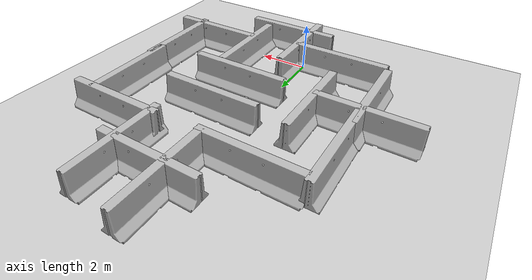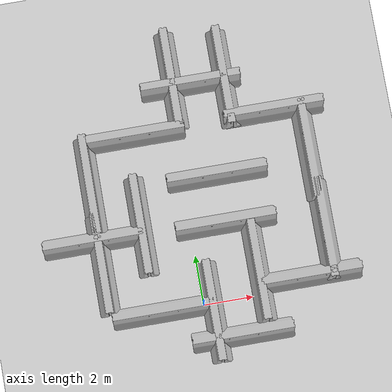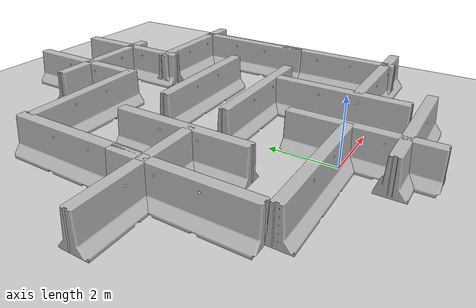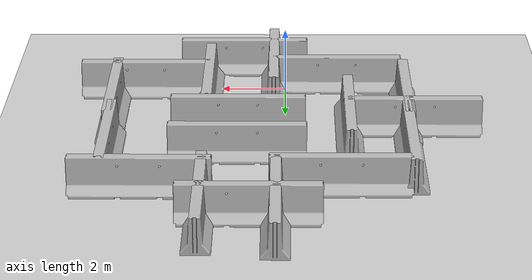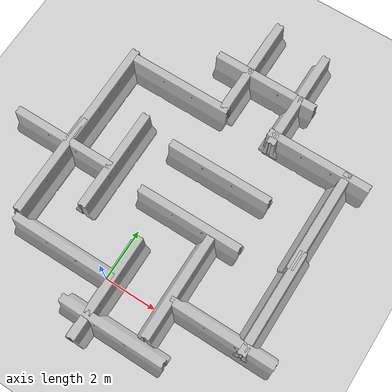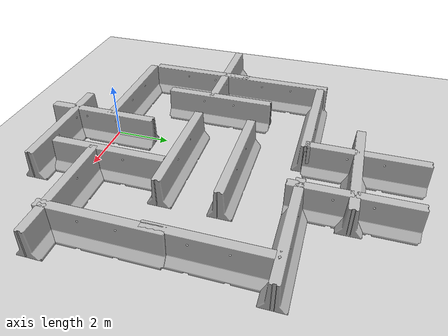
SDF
<sdf version="1.4">
 <world name="default">
  <light name="sun" type="directional">
   <pose>0 0 10 0 -0 0</pose>
   <diffuse>0.8 0.8 0.8 1</diffuse>
   <specular>0.1 0.1 0.1 1</specular>
   <attenuation>
    <range>1000</range>
    <constant>0.9</constant>
    <linear>0.01</linear>
    <quadratic>0.001</quadratic>
   </attenuation>
   <direction>-0.5 0.5 -1</direction>
  </light>
  <model name="ground_plane">
   <static>1</static>
   <link name="link">
    <collision name="collision">
     <geometry><plane><normal>0 0 1</normal><size>100 100</size></plane></geometry>
     <surface><friction><ode><mu>100</mu><mu2>50</mu2></ode></friction></surface>
    </collision>
    <visual name="visual">
     <cast_shadows>0</cast_shadows>
     <geometry><plane><normal>0 0 1</normal><size>100 100</size></plane></geometry>
     <material>
      <script><uri>file://media/materials/scripts/gazebo.material</uri><name>Gazebo/Grey</name></script>
     </material>
    </visual>
    <kinematic>1</kinematic>
    <velocity_decay><linear>0</linear><angular>0</angular></velocity_decay>
   </link>
  </model>
  <physics type="ode">
   <max_step_size>0.001</max_step_size>
   <real_time_factor>10</real_time_factor>
   <real_time_update_rate>10000</real_time_update_rate>
   <gravity>0 0 -9.8</gravity>
  </physics>
  <scene><ambient>0.4 0.4 0.4 1</ambient><background>0.7 0.7 0.7 1</background><shadows>1</shadows></scene>
  <spherical_coordinates>
   <surface_model>EARTH_WGS84</surface_model>
   <latitude_deg>0</latitude_deg>
   <longitude_deg>0</longitude_deg>
   <elevation>0</elevation>
   <heading_deg>0</heading_deg>
  </spherical_coordinates>
  <model name="jersey_barrier_0">
   <static>1</static>
   <link name="link">
    <visual name="visual">
     <geometry><mesh><uri>model://jersey_barrier/meshes/jersey_barrier.dae</uri></mesh></geometry>
    </visual>
    <collision name="upright">
     <pose>0 0 0.5715 0 -0 0</pose>
     <geometry><box><size>4.06542 0.3063 1.143</size></box></geometry>
    </collision>
    <collision name="base">
     <pose>0 0 0.032258 0 -0 0</pose>
     <geometry><box><size>4.06542 0.8107 0.064516</size></box></geometry>
    </collision>
    <collision name="base2">
     <pose>0 0 0.1 0 -0 0</pose>
     <geometry><box><size>4.06542 0.65 0.1</size></box></geometry>
    </collision>
    <collision name="base3">
     <pose>0 0 0.2 0 -0 0</pose>
     <geometry><box><size>4.06542 0.5 0.1</size></box></geometry>
    </collision>
    <collision name="left-angle">
     <pose>0 -0.224 0.2401 0.9 -0 0</pose>
     <geometry><box><size>4.06542 0.5 0.064516</size></box></geometry>
    </collision>
    <collision name="right-angle">
     <pose>0 0.224 0.2401 -0.9 0 0</pose>
     <geometry><box><size>4.06542 0.5 0.064516</size></box></geometry>
    </collision>
    <velocity_decay><linear>0</linear><angular>0</angular></velocity_decay>
   </link>
   <pose>0.988618 8.93184 0 0 -0 0</pose>
  </model>
  <model name="jersey_barrier_1">
   <static>1</static>
   <link name="link">
    <visual name="visual">
     <geometry><mesh><uri>model://jersey_barrier/meshes/jersey_barrier.dae</uri></mesh></geometry>
    </visual>
    <collision name="upright">
     <pose>0 0 0.5715 0 -0 0</pose>
     <geometry><box><size>4.06542 0.3063 1.143</size></box></geometry>
    </collision>
    <collision name="base">
     <pose>0 0 0.032258 0 -0 0</pose>
     <geometry><box><size>4.06542 0.8107 0.064516</size></box></geometry>
    </collision>
    <collision name="base2">
     <pose>0 0 0.1 0 -0 0</pose>
     <geometry><box><size>4.06542 0.65 0.1</size></box></geometry>
    </collision>
    <collision name="base3">
     <pose>0 0 0.2 0 -0 0</pose>
     <geometry><box><size>4.06542 0.5 0.1</size></box></geometry>
    </collision>
    <collision name="left-angle">
     <pose>0 -0.224 0.2401 0.9 -0 0</pose>
     <geometry><box><size>4.06542 0.5 0.064516</size></box></geometry>
    </collision>
    <collision name="right-angle">
     <pose>0 0.224 0.2401 -0.9 0 0</pose>
     <geometry><box><size>4.06542 0.5 0.064516</size></box></geometry>
    </collision>
    <velocity_decay><linear>0</linear><angular>0</angular></velocity_decay>
   </link>
   <pose>2.35061 8.92401 0 0 0 -1.5708</pose>
  </model>
  <model name="jersey_barrier_2">
   <static>1</static>
   <link name="link">
    <visual name="visual">
     <geometry><mesh><uri>model://jersey_barrier/meshes/jersey_barrier.dae</uri></mesh></geometry>
    </visual>
    <collision name="upright">
     <pose>0 0 0.5715 0 -0 0</pose>
     <geometry><box><size>4.06542 0.3063 1.143</size></box></geometry>
    </collision>
    <collision name="base">
     <pose>0 0 0.032258 0 -0 0</pose>
     <geometry><box><size>4.06542 0.8107 0.064516</size></box></geometry>
    </collision>
    <collision name="base2">
     <pose>0 0 0.1 0 -0 0</pose>
     <geometry><box><size>4.06542 0.65 0.1</size></box></geometry>
    </collision>
    <collision name="base3">
     <pose>0 0 0.2 0 -0 0</pose>
     <geometry><box><size>4.06542 0.5 0.1</size></box></geometry>
    </collision>
    <collision name="left-angle">
     <pose>0 -0.224 0.2401 0.9 -0 0</pose>
     <geometry><box><size>4.06542 0.5 0.064516</size></box></geometry>
    </collision>
    <collision name="right-angle">
     <pose>0 0.224 0.2401 -0.9 0 0</pose>
     <geometry><box><size>4.06542 0.5 0.064516</size></box></geometry>
    </collision>
    <velocity_decay><linear>0</linear><angular>0</angular></velocity_decay>
   </link>
   <pose>4.08822 7.29699 0 0 -0 0</pose>
  </model>
  <model name="jersey_barrier_3">
   <static>1</static>
   <link name="link">
    <visual name="visual">
     <geometry><mesh><uri>model://jersey_barrier/meshes/jersey_barrier.dae</uri></mesh></geometry>
    </visual>
    <collision name="upright">
     <pose>0 0 0.5715 0 -0 0</pose>
     <geometry><box><size>4.06542 0.3063 1.143</size></box></geometry>
    </collision>
    <collision name="base">
     <pose>0 0 0.032258 0 -0 0</pose>
     <geometry><box><size>4.06542 0.8107 0.064516</size></box></geometry>
    </collision>
    <collision name="base2">
     <pose>0 0 0.1 0 -0 0</pose>
     <geometry><box><size>4.06542 0.65 0.1</size></box></geometry>
    </collision>
    <collision name="base3">
     <pose>0 0 0.2 0 -0 0</pose>
     <geometry><box><size>4.06542 0.5 0.1</size></box></geometry>
    </collision>
    <collision name="left-angle">
     <pose>0 -0.224 0.2401 0.9 -0 0</pose>
     <geometry><box><size>4.06542 0.5 0.064516</size></box></geometry>
    </collision>
    <collision name="right-angle">
     <pose>0 0.224 0.2401 -0.9 0 0</pose>
     <geometry><box><size>4.06542 0.5 0.064516</size></box></geometry>
    </collision>
    <velocity_decay><linear>0</linear><angular>0</angular></velocity_decay>
   </link>
   <pose>5.20367 5.40538 -0 0 0 -1.5708</pose>
  </model>
  <model name="jersey_barrier_4">
   <static>1</static>
   <link name="link">
    <visual name="visual">
     <geometry><mesh><uri>model://jersey_barrier/meshes/jersey_barrier.dae</uri></mesh></geometry>
    </visual>
    <collision name="upright">
     <pose>0 0 0.5715 0 -0 0</pose>
     <geometry><box><size>4.06542 0.3063 1.143</size></box></geometry>
    </collision>
    <collision name="base">
     <pose>0 0 0.032258 0 -0 0</pose>
     <geometry><box><size>4.06542 0.8107 0.064516</size></box></geometry>
    </collision>
    <collision name="base2">
     <pose>0 0 0.1 0 -0 0</pose>
     <geometry><box><size>4.06542 0.65 0.1</size></box></geometry>
    </collision>
    <collision name="base3">
     <pose>0 0 0.2 0 -0 0</pose>
     <geometry><box><size>4.06542 0.5 0.1</size></box></geometry>
    </collision>
    <collision name="left-angle">
     <pose>0 -0.224 0.2401 0.9 -0 0</pose>
     <geometry><box><size>4.06542 0.5 0.064516</size></box></geometry>
    </collision>
    <collision name="right-angle">
     <pose>0 0.224 0.2401 -0.9 0 0</pose>
     <geometry><box><size>4.06542 0.5 0.064516</size></box></geometry>
    </collision>
    <velocity_decay><linear>0</linear><angular>0</angular></velocity_decay>
   </link>
   <pose>0.356382 -0.360778 0 0 0 -1.5708</pose>
  </model>
  <model name="jersey_barrier_5">
   <static>1</static>
   <link name="link">
    <visual name="visual">
     <geometry><mesh><uri>model://jersey_barrier/meshes/jersey_barrier.dae</uri></mesh></geometry>
    </visual>
    <collision name="upright">
     <pose>0 0 0.5715 0 -0 0</pose>
     <geometry><box><size>4.06542 0.3063 1.143</size></box></geometry>
    </collision>
    <collision name="base">
     <pose>0 0 0.032258 0 -0 0</pose>
     <geometry><box><size>4.06542 0.8107 0.064516</size></box></geometry>
    </collision>
    <collision name="base2">
     <pose>0 0 0.1 0 -0 0</pose>
     <geometry><box><size>4.06542 0.65 0.1</size></box></geometry>
    </collision>
    <collision name="base3">
     <pose>0 0 0.2 0 -0 0</pose>
     <geometry><box><size>4.06542 0.5 0.1</size></box></geometry>
    </collision>
    <collision name="left-angle">
     <pose>0 -0.224 0.2401 0.9 -0 0</pose>
     <geometry><box><size>4.06542 0.5 0.064516</size></box></geometry>
    </collision>
    <collision name="right-angle">
     <pose>0 0.224 0.2401 -0.9 0 0</pose>
     <geometry><box><size>4.06542 0.5 0.064516</size></box></geometry>
    </collision>
    <velocity_decay><linear>0</linear><angular>0</angular></velocity_decay>
   </link>
   <pose>5.27623 2.15324 0 0 0 -1.5708</pose>
  </model>
  <model name="jersey_barrier_8">
   <static>1</static>
   <link name="link">
    <visual name="visual">
     <geometry><mesh><uri>model://jersey_barrier/meshes/jersey_barrier.dae</uri></mesh></geometry>
    </visual>
    <collision name="upright">
     <pose>0 0 0.5715 0 -0 0</pose>
     <geometry><box><size>4.06542 0.3063 1.143</size></box></geometry>
    </collision>
    <collision name="base">
     <pose>0 0 0.032258 0 -0 0</pose>
     <geometry><box><size>4.06542 0.8107 0.064516</size></box></geometry>
    </collision>
    <collision name="base2">
     <pose>0 0 0.1 0 -0 0</pose>
     <geometry><box><size>4.06542 0.65 0.1</size></box></geometry>
    </collision>
    <collision name="base3">
     <pose>0 0 0.2 0 -0 0</pose>
     <geometry><box><size>4.06542 0.5 0.1</size></box></geometry>
    </collision>
    <collision name="left-angle">
     <pose>0 -0.224 0.2401 0.9 -0 0</pose>
     <geometry><box><size>4.06542 0.5 0.064516</size></box></geometry>
    </collision>
    <collision name="right-angle">
     <pose>0 0.224 0.2401 -0.9 0 0</pose>
     <geometry><box><size>4.06542 0.5 0.064516</size></box></geometry>
    </collision>
    <velocity_decay><linear>0</linear><angular>0</angular></velocity_decay>
   </link>
   <pose>4.38498 0.419911 0 0 -0 0</pose>
  </model>
  <model name="jersey_barrier_9">
   <static>1</static>
   <link name="link">
    <visual name="visual">
     <geometry><mesh><uri>model://jersey_barrier/meshes/jersey_barrier.dae</uri></mesh></geometry>
    </visual>
    <collision name="upright">
     <pose>0 0 0.5715 0 -0 0</pose>
     <geometry><box><size>4.06542 0.3063 1.143</size></box></geometry>
    </collision>
    <collision name="base">
     <pose>0 0 0.032258 0 -0 0</pose>
     <geometry><box><size>4.06542 0.8107 0.064516</size></box></geometry>
    </collision>
    <collision name="base2">
     <pose>0 0 0.1 0 -0 0</pose>
     <geometry><box><size>4.06542 0.65 0.1</size></box></geometry>
    </collision>
    <collision name="base3">
     <pose>0 0 0.2 0 -0 0</pose>
     <geometry><box><size>4.06542 0.5 0.1</size></box></geometry>
    </collision>
    <collision name="left-angle">
     <pose>0 -0.224 0.2401 0.9 -0 0</pose>
     <geometry><box><size>4.06542 0.5 0.064516</size></box></geometry>
    </collision>
    <collision name="right-angle">
     <pose>0 0.224 0.2401 -0.9 0 0</pose>
     <geometry><box><size>4.06542 0.5 0.064516</size></box></geometry>
    </collision>
    <velocity_decay><linear>0</linear><angular>0</angular></velocity_decay>
   </link>
   <pose>1.32528 -1.43735 -0 0 -0 0</pose>
  </model>
  <model name="jersey_barrier_10">
   <static>1</static>
   <link name="link">
    <visual name="visual">
     <geometry><mesh><uri>model://jersey_barrier/meshes/jersey_barrier.dae</uri></mesh></geometry>
    </visual>
    <collision name="upright">
     <pose>0 0 0.5715 0 -0 0</pose>
     <geometry><box><size>4.06542 0.3063 1.143</size></box></geometry>
    </collision>
    <collision name="base">
     <pose>0 0 0.032258 0 -0 0</pose>
     <geometry><box><size>4.06542 0.8107 0.064516</size></box></geometry>
    </collision>
    <collision name="base2">
     <pose>0 0 0.1 0 -0 0</pose>
     <geometry><box><size>4.06542 0.65 0.1</size></box></geometry>
    </collision>
    <collision name="base3">
     <pose>0 0 0.2 0 -0 0</pose>
     <geometry><box><size>4.06542 0.5 0.1</size></box></geometry>
    </collision>
    <collision name="left-angle">
     <pose>0 -0.224 0.2401 0.9 -0 0</pose>
     <geometry><box><size>4.06542 0.5 0.064516</size></box></geometry>
    </collision>
    <collision name="right-angle">
     <pose>0 0.224 0.2401 -0.9 0 0</pose>
     <geometry><box><size>4.06542 0.5 0.064516</size></box></geometry>
    </collision>
    <velocity_decay><linear>0</linear><angular>0</angular></velocity_decay>
   </link>
   <pose>-1.62056 -0.002207 0 0 -0 0</pose>
  </model>
  <model name="jersey_barrier_12">
   <static>1</static>
   <link name="link">
    <visual name="visual">
     <geometry><mesh><uri>model://jersey_barrier/meshes/jersey_barrier.dae</uri></mesh></geometry>
    </visual>
    <collision name="upright">
     <pose>0 0 0.5715 0 -0 0</pose>
     <geometry><box><size>4.06542 0.3063 1.143</size></box></geometry>
    </collision>
    <collision name="base">
     <pose>0 0 0.032258 0 -0 0</pose>
     <geometry><box><size>4.06542 0.8107 0.064516</size></box></geometry>
    </collision>
    <collision name="base2">
     <pose>0 0 0.1 0 -0 0</pose>
     <geometry><box><size>4.06542 0.65 0.1</size></box></geometry>
    </collision>
    <collision name="base3">
     <pose>0 0 0.2 0 -0 0</pose>
     <geometry><box><size>4.06542 0.5 0.1</size></box></geometry>
    </collision>
    <collision name="left-angle">
     <pose>0 -0.224 0.2401 0.9 -0 0</pose>
     <geometry><box><size>4.06542 0.5 0.064516</size></box></geometry>
    </collision>
    <collision name="right-angle">
     <pose>0 0.224 0.2401 -0.9 0 0</pose>
     <geometry><box><size>4.06542 0.5 0.064516</size></box></geometry>
    </collision>
    <velocity_decay><linear>0</linear><angular>0</angular></velocity_decay>
   </link>
   <pose>1.40128 5.08256 0 0 -0 0</pose>
  </model>
  <model name="jersey_barrier_13">
   <static>1</static>
   <link name="link">
    <visual name="visual">
     <geometry><mesh><uri>model://jersey_barrier/meshes/jersey_barrier.dae</uri></mesh></geometry>
    </visual>
    <collision name="upright">
     <pose>0 0 0.5715 0 -0 0</pose>
     <geometry><box><size>4.06542 0.3063 1.143</size></box></geometry>
    </collision>
    <collision name="base">
     <pose>0 0 0.032258 0 -0 0</pose>
     <geometry><box><size>4.06542 0.8107 0.064516</size></box></geometry>
    </collision>
    <collision name="base2">
     <pose>0 0 0.1 0 -0 0</pose>
     <geometry><box><size>4.06542 0.65 0.1</size></box></geometry>
    </collision>
    <collision name="base3">
     <pose>0 0 0.2 0 -0 0</pose>
     <geometry><box><size>4.06542 0.5 0.1</size></box></geometry>
    </collision>
    <collision name="left-angle">
     <pose>0 -0.224 0.2401 0.9 -0 0</pose>
     <geometry><box><size>4.06542 0.5 0.064516</size></box></geometry>
    </collision>
    <collision name="right-angle">
     <pose>0 0.224 0.2401 -0.9 0 0</pose>
     <geometry><box><size>4.06542 0.5 0.064516</size></box></geometry>
    </collision>
    <velocity_decay><linear>0</linear><angular>0</angular></velocity_decay>
   </link>
   <pose>1.41777 3.09756 0 0 -0 0</pose>
  </model>
  <model name="jersey_barrier_14">
   <static>1</static>
   <link name="link">
    <visual name="visual">
     <geometry><mesh><uri>model://jersey_barrier/meshes/jersey_barrier.dae</uri></mesh></geometry>
    </visual>
    <collision name="upright">
     <pose>0 0 0.5715 0 -0 0</pose>
     <geometry><box><size>4.06542 0.3063 1.143</size></box></geometry>
    </collision>
    <collision name="base">
     <pose>0 0 0.032258 0 -0 0</pose>
     <geometry><box><size>4.06542 0.8107 0.064516</size></box></geometry>
    </collision>
    <collision name="base2">
     <pose>0 0 0.1 0 -0 0</pose>
     <geometry><box><size>4.06542 0.65 0.1</size></box></geometry>
    </collision>
    <collision name="base3">
     <pose>0 0 0.2 0 -0 0</pose>
     <geometry><box><size>4.06542 0.5 0.1</size></box></geometry>
    </collision>
    <collision name="left-angle">
     <pose>0 -0.224 0.2401 0.9 -0 0</pose>
     <geometry><box><size>4.06542 0.5 0.064516</size></box></geometry>
    </collision>
    <collision name="right-angle">
     <pose>0 0.224 0.2401 -0.9 0 0</pose>
     <geometry><box><size>4.06542 0.5 0.064516</size></box></geometry>
    </collision>
    <velocity_decay><linear>0</linear><angular>0</angular></velocity_decay>
   </link>
   <pose>2.38274 0.930792 0 0 0 -1.5708</pose>
  </model>
  <model name="jersey_barrier_16">
   <static>1</static>
   <link name="link">
    <visual name="visual">
     <geometry><mesh><uri>model://jersey_barrier/meshes/jersey_barrier.dae</uri></mesh></geometry>
    </visual>
    <collision name="upright">
     <pose>0 0 0.5715 0 -0 0</pose>
     <geometry><box><size>4.06542 0.3063 1.143</size></box></geometry>
    </collision>
    <collision name="base">
     <pose>0 0 0.032258 0 -0 0</pose>
     <geometry><box><size>4.06542 0.8107 0.064516</size></box></geometry>
    </collision>
    <collision name="base2">
     <pose>0 0 0.1 0 -0 0</pose>
     <geometry><box><size>4.06542 0.65 0.1</size></box></geometry>
    </collision>
    <collision name="base3">
     <pose>0 0 0.2 0 -0 0</pose>
     <geometry><box><size>4.06542 0.5 0.1</size></box></geometry>
    </collision>
    <collision name="left-angle">
     <pose>0 -0.224 0.2401 0.9 -0 0</pose>
     <geometry><box><size>4.06542 0.5 0.064516</size></box></geometry>
    </collision>
    <collision name="right-angle">
     <pose>0 0.224 0.2401 -0.9 0 0</pose>
     <geometry><box><size>4.06542 0.5 0.064516</size></box></geometry>
    </collision>
    <velocity_decay><linear>0</linear><angular>0</angular></velocity_decay>
   </link>
   <pose>-1.57868 7.18938 0 0 -0 0</pose>
  </model>
  <model name="jersey_barrier_21">
   <static>1</static>
   <link name="link">
    <visual name="visual">
     <geometry><mesh><uri>model://jersey_barrier/meshes/jersey_barrier.dae</uri></mesh></geometry>
    </visual>
    <collision name="upright">
     <pose>0 0 0.5715 0 -0 0</pose>
     <geometry><box><size>4.06542 0.3063 1.143</size></box></geometry>
    </collision>
    <collision name="base">
     <pose>0 0 0.032258 0 -0 0</pose>
     <geometry><box><size>4.06542 0.8107 0.064516</size></box></geometry>
    </collision>
    <collision name="base2">
     <pose>0 0 0.1 0 -0 0</pose>
     <geometry><box><size>4.06542 0.65 0.1</size></box></geometry>
    </collision>
    <collision name="base3">
     <pose>0 0 0.2 0 -0 0</pose>
     <geometry><box><size>4.06542 0.5 0.1</size></box></geometry>
    </collision>
    <collision name="left-angle">
     <pose>0 -0.224 0.2401 0.9 -0 0</pose>
     <geometry><box><size>4.06542 0.5 0.064516</size></box></geometry>
    </collision>
    <collision name="right-angle">
     <pose>0 0.224 0.2401 -0.9 0 0</pose>
     <geometry><box><size>4.06542 0.5 0.064516</size></box></geometry>
    </collision>
    <velocity_decay><linear>0</linear><angular>0</angular></velocity_decay>
   </link>
   <pose>-1.92704 3.49991 0 0 0 -1.5708</pose>
  </model>
  <model name="jersey_barrier_23">
   <static>1</static>
   <link name="link">
    <visual name="visual">
     <geometry><mesh><uri>model://jersey_barrier/meshes/jersey_barrier.dae</uri></mesh></geometry>
    </visual>
    <collision name="upright">
     <pose>0 0 0.5715 0 -0 0</pose>
     <geometry><box><size>4.06542 0.3063 1.143</size></box></geometry>
    </collision>
    <collision name="base">
     <pose>0 0 0.032258 0 -0 0</pose>
     <geometry><box><size>4.06542 0.8107 0.064516</size></box></geometry>
    </collision>
    <collision name="base2">
     <pose>0 0 0.1 0 -0 0</pose>
     <geometry><box><size>4.06542 0.65 0.1</size></box></geometry>
    </collision>
    <collision name="base3">
     <pose>0 0 0.2 0 -0 0</pose>
     <geometry><box><size>4.06542 0.5 0.1</size></box></geometry>
    </collision>
    <collision name="left-angle">
     <pose>0 -0.224 0.2401 0.9 -0 0</pose>
     <geometry><box><size>4.06542 0.5 0.064516</size></box></geometry>
    </collision>
    <collision name="right-angle">
     <pose>0 0.224 0.2401 -0.9 0 0</pose>
     <geometry><box><size>4.06542 0.5 0.064516</size></box></geometry>
    </collision>
    <velocity_decay><linear>0</linear><angular>0</angular></velocity_decay>
   </link>
   <pose>-3.66627 5.42667 0 0 -0 1.5708</pose>
  </model>
  <model name="jersey_barrier_24">
   <static>1</static>
   <link name="link">
    <visual name="visual">
     <geometry><mesh><uri>model://jersey_barrier/meshes/jersey_barrier.dae</uri></mesh></geometry>
    </visual>
    <collision name="upright">
     <pose>0 0 0.5715 0 -0 0</pose>
     <geometry><box><size>4.06542 0.3063 1.143</size></box></geometry>
    </collision>
    <collision name="base">
     <pose>0 0 0.032258 0 -0 0</pose>
     <geometry><box><size>4.06542 0.8107 0.064516</size></box></geometry>
    </collision>
    <collision name="base2">
     <pose>0 0 0.1 0 -0 0</pose>
     <geometry><box><size>4.06542 0.65 0.1</size></box></geometry>
    </collision>
    <collision name="base3">
     <pose>0 0 0.2 0 -0 0</pose>
     <geometry><box><size>4.06542 0.5 0.1</size></box></geometry>
    </collision>
    <collision name="left-angle">
     <pose>0 -0.224 0.2401 0.9 -0 0</pose>
     <geometry><box><size>4.06542 0.5 0.064516</size></box></geometry>
    </collision>
    <collision name="right-angle">
     <pose>0 0.224 0.2401 -0.9 0 0</pose>
     <geometry><box><size>4.06542 0.5 0.064516</size></box></geometry>
    </collision>
    <velocity_decay><linear>0</linear><angular>0</angular></velocity_decay>
   </link>
   <pose>-3.70204 2.2146 0 0 -0 1.5708</pose>
  </model>
  <model name="jersey_barrier_25">
   <static>1</static>
   <link name="link">
    <visual name="visual">
     <geometry><mesh><uri>model://jersey_barrier/meshes/jersey_barrier.dae</uri></mesh></geometry>
    </visual>
    <collision name="upright">
     <pose>0 0 0.5715 0 -0 0</pose>
     <geometry><box><size>4.06542 0.3063 1.143</size></box></geometry>
    </collision>
    <collision name="base">
     <pose>0 0 0.032258 0 -0 0</pose>
     <geometry><box><size>4.06542 0.8107 0.064516</size></box></geometry>
    </collision>
    <collision name="base2">
     <pose>0 0 0.1 0 -0 0</pose>
     <geometry><box><size>4.06542 0.65 0.1</size></box></geometry>
    </collision>
    <collision name="base3">
     <pose>0 0 0.2 0 -0 0</pose>
     <geometry><box><size>4.06542 0.5 0.1</size></box></geometry>
    </collision>
    <collision name="left-angle">
     <pose>0 -0.224 0.2401 0.9 -0 0</pose>
     <geometry><box><size>4.06542 0.5 0.064516</size></box></geometry>
    </collision>
    <collision name="right-angle">
     <pose>0 0.224 0.2401 -0.9 0 0</pose>
     <geometry><box><size>4.06542 0.5 0.064516</size></box></geometry>
    </collision>
    <velocity_decay><linear>0</linear><angular>0</angular></velocity_decay>
   </link>
   <pose>-3.88639 3.22549 0 0 -0 0</pose>
  </model>
  <model name="jersey_barrier_26">
   <static>1</static>
   <link name="link">
    <visual name="visual">
     <geometry><mesh><uri>model://jersey_barrier/meshes/jersey_barrier.dae</uri></mesh></geometry>
    </visual>
    <collision name="upright">
     <pose>0 0 0.5715 0 -0 0</pose>
     <geometry><box><size>4.06542 0.3063 1.143</size></box></geometry>
    </collision>
    <collision name="base">
     <pose>0 0 0.032258 0 -0 0</pose>
     <geometry><box><size>4.06542 0.8107 0.064516</size></box></geometry>
    </collision>
    <collision name="base2">
     <pose>0 0 0.1 0 -0 0</pose>
     <geometry><box><size>4.06542 0.65 0.1</size></box></geometry>
    </collision>
    <collision name="base3">
     <pose>0 0 0.2 0 -0 0</pose>
     <geometry><box><size>4.06542 0.5 0.1</size></box></geometry>
    </collision>
    <collision name="left-angle">
     <pose>0 -0.224 0.2401 0.9 -0 0</pose>
     <geometry><box><size>4.06542 0.5 0.064516</size></box></geometry>
    </collision>
    <collision name="right-angle">
     <pose>0 0.224 0.2401 -0.9 0 0</pose>
     <geometry><box><size>4.06542 0.5 0.064516</size></box></geometry>
    </collision>
    <velocity_decay><linear>0</linear><angular>0</angular></velocity_decay>
   </link>
   <pose>0.257363 9.17569 0 0 0 -1.5708</pose>
  </model>
 </world>
</sdf>
